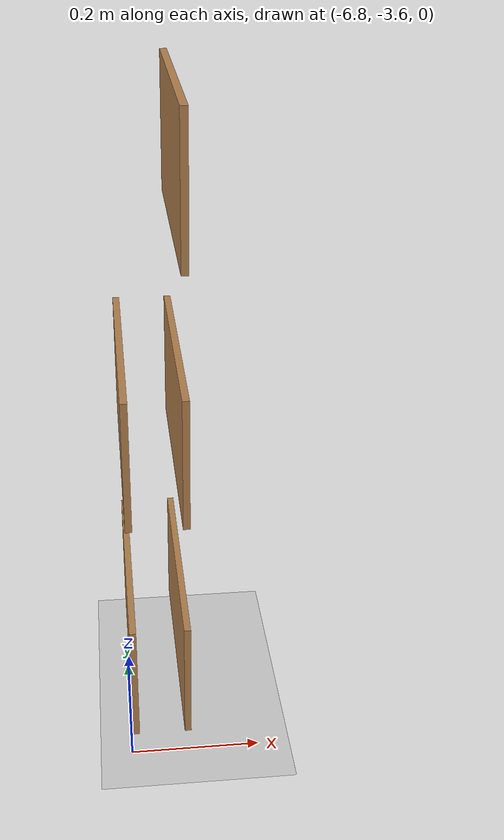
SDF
<sdf version="1.7">
 <world name="default">
  <model name="ground_plane">
   <static>1</static>
   <link name="link">
    <collision name="collision">
     <geometry><plane><normal>0 0 1</normal><size>100 100</size></plane></geometry>
     <surface><friction><ode><mu>1</mu><mu2>1</mu2></ode></friction></surface>
    </collision>
    <visual name="visual">
     <cast_shadows>0</cast_shadows>
     <geometry><plane><normal>0 0 1</normal><size>100 100</size></plane></geometry>
     <material>
      <script><uri>file://media/materials/scripts/gazebo.material</uri><name>Gazebo/Grey</name></script>
     </material>
    </visual>
    <velocity_decay><linear>0</linear><angular>0</angular></velocity_decay>
   </link>
  </model>
  <model name="bookshelf_0">
   <link name="link_5">
    <inertial>
     <mass>1</mass>
     <inertia>
      <ixx>0.166667</ixx>
      <ixy>0</ixy>
      <ixz>0</ixz>
      <iyy>0.166667</iyy>
      <iyz>0</iyz>
      <izz>0.166667</izz>
     </inertia>
    </inertial>
    <pose>-0.06 -0.195 0.907998 0 0 -1.57</pose>
    <visual name="visual">
     <geometry><box><size>0.35 0.01 0.2</size></box></geometry>
     <material>
      <script><uri>file://media/materials/scripts/gazebo.material</uri><name>Gazebo/Wood</name></script>
      <shader type="pixel"/>
     </material>
    </visual>
    <visual name="ModelPreview_3::link_1::visual_1">
     <geometry><box><size>0.35 0.01 0.2</size></box></geometry>
     <material>
      <lighting>1</lighting>
      <script><uri>file://media/materials/scripts/gazebo.material</uri><name>Gazebo/Grey</name></script>
      <shader type="pixel"><normal_map>__default__</normal_map></shader>
      <ambient>0.3 0.3 0.3 1</ambient>
      <diffuse>0.7 0.7 0.7 1</diffuse>
      <specular>0.01 0.01 0.01 1</specular>
      <emissive>0 0 0 1</emissive>
     </material>
    </visual>
    <collision name="collision">
     <geometry><box><size>0.35 0.01 0.2</size></box></geometry>
     <surface>
      <friction>
       <ode><mu>1</mu><mu2>1</mu2><fdir1>0 0 0</fdir1><slip1>0</slip1><slip2>0</slip2></ode>
       <torsional>
        <coefficient>1</coefficient>
        <patch_radius>0</patch_radius>
        <surface_radius>0</surface_radius>
        <use_patch_radius>1</use_patch_radius>
        <ode><slip>0</slip></ode>
       </torsional>
      </friction>
      <bounce><restitution_coefficient>0</restitution_coefficient><threshold>1e+06</threshold></bounce>
      <contact>
       <collide_without_contact>0</collide_without_contact>
       <collide_without_contact_bitmask>1</collide_without_contact_bitmask>
       <collide_bitmask>1</collide_bitmask>
       <ode>
        <soft_cfm>0</soft_cfm>
        <soft_erp>0.2</soft_erp>
        <kp>1e+13</kp>
        <kd>1</kd>
        <max_vel>0.01</max_vel>
        <min_depth>0</min_depth>
       </ode>
       <bullet>
        <split_impulse>1</split_impulse>
        <split_impulse_penetration_threshold>-0.01</split_impulse_penetration_threshold>
        <soft_cfm>0</soft_cfm>
        <soft_erp>0.2</soft_erp>
        <kp>1e+13</kp>
        <kd>1</kd>
       </bullet>
      </contact>
     </surface>
    </collision>
   </link>
   <link name="link_2_4">
    <inertial>
     <mass>1</mass>
     <inertia>
      <ixx>0.166667</ixx>
      <ixy>0</ixy>
      <ixz>0</ixz>
      <iyy>0.166667</iyy>
      <iyz>0</iyz>
      <izz>0.166667</izz>
     </inertia>
    </inertial>
    <pose>-0.14 -0.195 0.5379 0 0 -1.57</pose>
    <visual name="visual">
     <geometry><box><size>0.35 0.01 0.2</size></box></geometry>
     <material>
      <script><uri>file://media/materials/scripts/gazebo.material</uri><name>Gazebo/Wood</name></script>
      <shader type="pixel"/>
     </material>
    </visual>
    <visual name="ModelPreview_3::link_1::visual_1">
     <geometry><box><size>0.35 0.01 0.2</size></box></geometry>
     <material>
      <lighting>1</lighting>
      <script><uri>file://media/materials/scripts/gazebo.material</uri><name>Gazebo/Grey</name></script>
      <shader type="pixel"><normal_map>__default__</normal_map></shader>
      <ambient>0.3 0.3 0.3 1</ambient>
      <diffuse>0.7 0.7 0.7 1</diffuse>
      <specular>0.01 0.01 0.01 1</specular>
      <emissive>0 0 0 1</emissive>
     </material>
    </visual>
    <collision name="collision">
     <geometry><box><size>0.35 0.01 0.2</size></box></geometry>
     <surface>
      <friction>
       <ode><mu>1</mu><mu2>1</mu2><fdir1>0 0 0</fdir1><slip1>0</slip1><slip2>0</slip2></ode>
       <torsional>
        <coefficient>1</coefficient>
        <patch_radius>0</patch_radius>
        <surface_radius>0</surface_radius>
        <use_patch_radius>1</use_patch_radius>
        <ode><slip>0</slip></ode>
       </torsional>
      </friction>
      <bounce><restitution_coefficient>0</restitution_coefficient><threshold>1e+06</threshold></bounce>
      <contact>
       <collide_without_contact>0</collide_without_contact>
       <collide_without_contact_bitmask>1</collide_without_contact_bitmask>
       <collide_bitmask>1</collide_bitmask>
       <ode>
        <soft_cfm>0</soft_cfm>
        <soft_erp>0.2</soft_erp>
        <kp>1e+13</kp>
        <kd>1</kd>
        <max_vel>0.01</max_vel>
        <min_depth>0</min_depth>
       </ode>
       <bullet>
        <split_impulse>1</split_impulse>
        <split_impulse_penetration_threshold>-0.01</split_impulse_penetration_threshold>
        <soft_cfm>0</soft_cfm>
        <soft_erp>0.2</soft_erp>
        <kp>1e+13</kp>
        <kd>1</kd>
       </bullet>
      </contact>
     </surface>
    </collision>
   </link>
   <link name="link_2_5">
    <inertial>
     <mass>1</mass>
     <inertia>
      <ixx>0.166667</ixx>
      <ixy>0</ixy>
      <ixz>0</ixz>
      <iyy>0.166667</iyy>
      <iyz>0</iyz>
      <izz>0.166667</izz>
     </inertia>
    </inertial>
    <pose>-0.06 -0.195 0.5379 0 0 -1.57</pose>
    <visual name="visual">
     <geometry><box><size>0.35 0.01 0.2</size></box></geometry>
     <material>
      <script><uri>file://media/materials/scripts/gazebo.material</uri><name>Gazebo/Wood</name></script>
      <shader type="pixel"/>
     </material>
    </visual>
    <visual name="ModelPreview_3::link_1::visual_1">
     <geometry><box><size>0.35 0.01 0.2</size></box></geometry>
     <material>
      <lighting>1</lighting>
      <script><uri>file://media/materials/scripts/gazebo.material</uri><name>Gazebo/Grey</name></script>
      <shader type="pixel"><normal_map>__default__</normal_map></shader>
      <ambient>0.3 0.3 0.3 1</ambient>
      <diffuse>0.7 0.7 0.7 1</diffuse>
      <specular>0.01 0.01 0.01 1</specular>
      <emissive>0 0 0 1</emissive>
     </material>
    </visual>
    <collision name="collision">
     <geometry><box><size>0.35 0.01 0.2</size></box></geometry>
     <surface>
      <friction>
       <ode><mu>1</mu><mu2>1</mu2><fdir1>0 0 0</fdir1><slip1>0</slip1><slip2>0</slip2></ode>
       <torsional>
        <coefficient>1</coefficient>
        <patch_radius>0</patch_radius>
        <surface_radius>0</surface_radius>
        <use_patch_radius>1</use_patch_radius>
        <ode><slip>0</slip></ode>
       </torsional>
      </friction>
      <bounce><restitution_coefficient>0</restitution_coefficient><threshold>1e+06</threshold></bounce>
      <contact>
       <collide_without_contact>0</collide_without_contact>
       <collide_without_contact_bitmask>1</collide_without_contact_bitmask>
       <collide_bitmask>1</collide_bitmask>
       <ode>
        <soft_cfm>0</soft_cfm>
        <soft_erp>0.2</soft_erp>
        <kp>1e+13</kp>
        <kd>1</kd>
        <max_vel>0.01</max_vel>
        <min_depth>0</min_depth>
       </ode>
       <bullet>
        <split_impulse>1</split_impulse>
        <split_impulse_penetration_threshold>-0.01</split_impulse_penetration_threshold>
        <soft_cfm>0</soft_cfm>
        <soft_erp>0.2</soft_erp>
        <kp>1e+13</kp>
        <kd>1</kd>
       </bullet>
      </contact>
     </surface>
    </collision>
   </link>
   <link name="link_3_4">
    <inertial>
     <mass>1</mass>
     <inertia>
      <ixx>0.166667</ixx>
      <ixy>0</ixy>
      <ixz>0</ixz>
      <iyy>0.166667</iyy>
      <iyz>0</iyz>
      <izz>0.166667</izz>
     </inertia>
    </inertial>
    <pose>-0.14 -0.195 0.158 0 0 -1.57</pose>
    <visual name="visual">
     <geometry><box><size>0.35 0.01 0.2</size></box></geometry>
     <material>
      <script><uri>file://media/materials/scripts/gazebo.material</uri><name>Gazebo/Wood</name></script>
      <shader type="pixel"/>
     </material>
    </visual>
    <visual name="ModelPreview_3::link_1::visual_1">
     <geometry><box><size>0.35 0.01 0.2</size></box></geometry>
     <material>
      <lighting>1</lighting>
      <script><uri>file://media/materials/scripts/gazebo.material</uri><name>Gazebo/Grey</name></script>
      <shader type="pixel"><normal_map>__default__</normal_map></shader>
      <ambient>0.3 0.3 0.3 1</ambient>
      <diffuse>0.7 0.7 0.7 1</diffuse>
      <specular>0.01 0.01 0.01 1</specular>
      <emissive>0 0 0 1</emissive>
     </material>
    </visual>
    <collision name="collision">
     <geometry><box><size>0.35 0.01 0.2</size></box></geometry>
     <surface>
      <friction>
       <ode><mu>1</mu><mu2>1</mu2><fdir1>0 0 0</fdir1><slip1>0</slip1><slip2>0</slip2></ode>
       <torsional>
        <coefficient>1</coefficient>
        <patch_radius>0</patch_radius>
        <surface_radius>0</surface_radius>
        <use_patch_radius>1</use_patch_radius>
        <ode><slip>0</slip></ode>
       </torsional>
      </friction>
      <bounce><restitution_coefficient>0</restitution_coefficient><threshold>1e+06</threshold></bounce>
      <contact>
       <collide_without_contact>0</collide_without_contact>
       <collide_without_contact_bitmask>1</collide_without_contact_bitmask>
       <collide_bitmask>1</collide_bitmask>
       <ode>
        <soft_cfm>0</soft_cfm>
        <soft_erp>0.2</soft_erp>
        <kp>1e+13</kp>
        <kd>1</kd>
        <max_vel>0.01</max_vel>
        <min_depth>0</min_depth>
       </ode>
       <bullet>
        <split_impulse>1</split_impulse>
        <split_impulse_penetration_threshold>-0.01</split_impulse_penetration_threshold>
        <soft_cfm>0</soft_cfm>
        <soft_erp>0.2</soft_erp>
        <kp>1e+13</kp>
        <kd>1</kd>
       </bullet>
      </contact>
     </surface>
    </collision>
   </link>
   <link name="link_3_5">
    <inertial>
     <mass>1</mass>
     <inertia>
      <ixx>0.166667</ixx>
      <ixy>0</ixy>
      <ixz>0</ixz>
      <iyy>0.166667</iyy>
      <iyz>0</iyz>
      <izz>0.166667</izz>
     </inertia>
    </inertial>
    <pose>-0.06 -0.195 0.158 0 0 -1.57</pose>
    <visual name="visual">
     <geometry><box><size>0.35 0.01 0.2</size></box></geometry>
     <material>
      <script><uri>file://media/materials/scripts/gazebo.material</uri><name>Gazebo/Wood</name></script>
      <shader type="pixel"/>
     </material>
    </visual>
    <visual name="ModelPreview_3::link_1::visual_1">
     <geometry><box><size>0.35 0.01 0.2</size></box></geometry>
     <material>
      <lighting>1</lighting>
      <script><uri>file://media/materials/scripts/gazebo.material</uri><name>Gazebo/Grey</name></script>
      <shader type="pixel"><normal_map>__default__</normal_map></shader>
      <ambient>0.3 0.3 0.3 1</ambient>
      <diffuse>0.7 0.7 0.7 1</diffuse>
      <specular>0.01 0.01 0.01 1</specular>
      <emissive>0 0 0 1</emissive>
     </material>
    </visual>
    <collision name="collision">
     <geometry><box><size>0.35 0.01 0.2</size></box></geometry>
     <surface>
      <friction>
       <ode><mu>1</mu><mu2>1</mu2><fdir1>0 0 0</fdir1><slip1>0</slip1><slip2>0</slip2></ode>
       <torsional>
        <coefficient>1</coefficient>
        <patch_radius>0</patch_radius>
        <surface_radius>0</surface_radius>
        <use_patch_radius>1</use_patch_radius>
        <ode><slip>0</slip></ode>
       </torsional>
      </friction>
      <bounce><restitution_coefficient>0</restitution_coefficient><threshold>1e+06</threshold></bounce>
      <contact>
       <collide_without_contact>0</collide_without_contact>
       <collide_without_contact_bitmask>1</collide_without_contact_bitmask>
       <collide_bitmask>1</collide_bitmask>
       <ode>
        <soft_cfm>0</soft_cfm>
        <soft_erp>0.2</soft_erp>
        <kp>1e+13</kp>
        <kd>1</kd>
        <max_vel>0.01</max_vel>
        <min_depth>0</min_depth>
       </ode>
       <bullet>
        <split_impulse>1</split_impulse>
        <split_impulse_penetration_threshold>-0.01</split_impulse_penetration_threshold>
        <soft_cfm>0</soft_cfm>
        <soft_erp>0.2</soft_erp>
        <kp>1e+13</kp>
        <kd>1</kd>
       </bullet>
      </contact>
     </surface>
    </collision>
   </link>
   <static>1</static>
   <pose>-6.65359 -3.24846 0 0 -0 0</pose>
  </model>
 </world>
</sdf>
